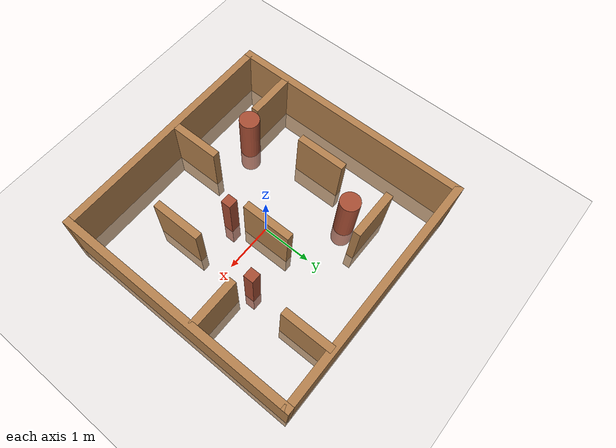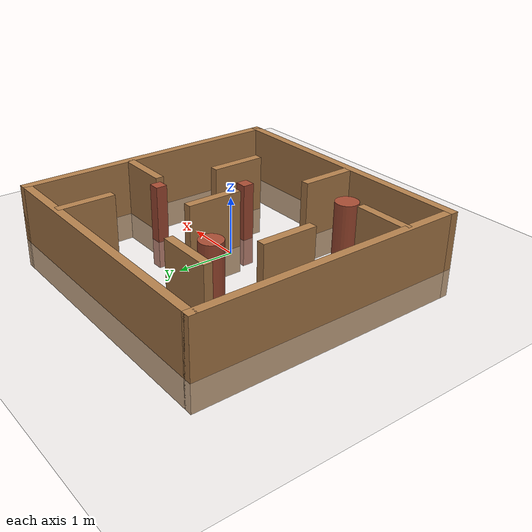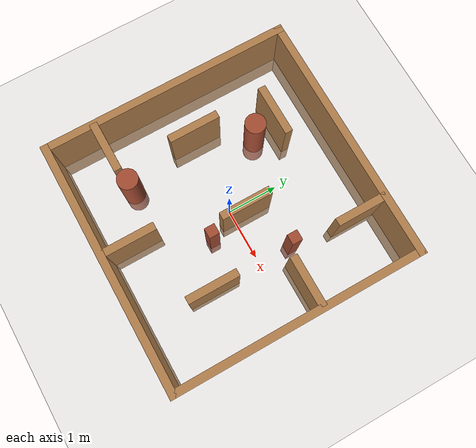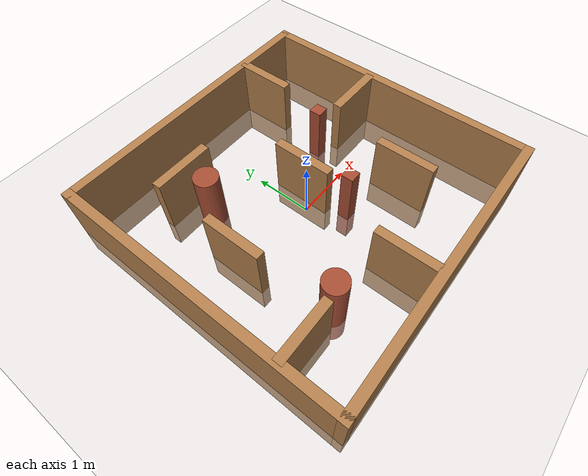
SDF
<sdf version="1.4">
 <world name="default">
  <include><uri>model://ground_plane</uri></include>
  <include><uri>model://sun</uri></include>
  <include><uri>model://my_plaza</uri><name>my_plaza</name></include>
 </world>
</sdf>

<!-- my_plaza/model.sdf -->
<sdf version='1.6'>
  <model name='my_plaza'>
    <pose frame=''>0 0 0 0 -0 0</pose>
    <link name='Wall_0'>
      <collision name='Wall_0_Collision'>
        <geometry>
          <box>
            <size>5 0.15 1.5</size>
          </box>
        </geometry>
        <pose frame=''>0 0 0.25 0 -0 0</pose>
      </collision>
      <visual name='Wall_0_Visual'>
        <pose frame=''>0 0 0.25 0 -0 0</pose>
        <geometry>
          <box>
            <size>5 0.15 1.5</size>
          </box>
        </geometry>
        <material>
          <script>
            <uri>file://media/materials/scripts/gazebo.material</uri>
            <name>Gazebo/Wood</name>
          </script>
          <ambient>1 1 1 1</ambient>
        </material>
      </visual>
      <pose frame=''>-2.425 0 0 0 -0 1.5708</pose>
    </link>
    <link name='Wall_11'>
      <collision name='Wall_11_Collision'>
        <geometry>
          <box>
            <size>1 0.15 1.5</size>
          </box>
        </geometry>
        <pose frame=''>0 0 0.25 0 -0 0</pose>
      </collision>
      <visual name='Wall_11_Visual'>
        <pose frame=''>0 0 0.25 0 -0 0</pose>
        <geometry>
          <box>
            <size>1 0.15 1.5</size>
          </box>
        </geometry>
        <material>
          <script>
            <uri>file://media/materials/scripts/gazebo.material</uri>
            <name>Gazebo/Wood</name>
          </script>
          <ambient>1 1 1 1</ambient>
        </material>
      </visual>
      <pose frame=''>-1.937 -1.467 0 0 -0 0</pose>
    </link>
    <link name='Wall_13'>
      <collision name='Wall_13_Collision'>
        <geometry>
          <box>
            <size>1 0.15 1.5</size>
          </box>
        </geometry>
        <pose frame=''>0 0 0.25 0 -0 0</pose>
      </collision>
      <visual name='Wall_13_Visual'>
        <pose frame=''>0 0 0.25 0 -0 0</pose>
        <geometry>
          <box>
            <size>1 0.15 1.5</size>
          </box>
        </geometry>
        <material>
          <script>
            <uri>file://media/materials/scripts/gazebo.material</uri>
            <name>Gazebo/Wood</name>
          </script>
          <ambient>1 1 1 1</ambient>
        </material>
      </visual>
      <pose frame=''>-0.22 -1.866 0 0 0 -1.5708</pose>
    </link>
    <link name='Wall_15'>
      <collision name='Wall_15_Collision'>
        <geometry>
          <box>
            <size>1 0.15 1.5</size>
          </box>
        </geometry>
        <pose frame=''>0 0 0.25 0 -0 0</pose>
      </collision>
      <visual name='Wall_15_Visual'>
        <pose frame=''>0 0 0.25 0 -0 0</pose>
        <geometry>
          <box>
            <size>1 0.15 1.5</size>
          </box>
        </geometry>
        <material>
          <script>
            <uri>file://media/materials/scripts/gazebo.material</uri>
            <name>Gazebo/Wood</name>
          </script>
          <ambient>1 1 1 1</ambient>
        </material>
      </visual>
      <pose frame=''>1.195 -1.002 0 0 -0 1.5708</pose>
    </link>
    <link name='Wall_17'>
      <collision name='Wall_17_Collision'>
        <geometry>
          <box>
            <size>1 0.15 1.5</size>
          </box>
        </geometry>
        <pose frame=''>0 0 0.25 0 -0 0</pose>
      </collision>
      <visual name='Wall_17_Visual'>
        <pose frame=''>0 0 0.25 0 -0 0</pose>
        <geometry>
          <box>
            <size>1 0.15 1.5</size>
          </box>
        </geometry>
        <material>
          <script>
            <uri>file://media/materials/scripts/gazebo.material</uri>
            <name>Gazebo/Wood</name>
          </script>
          <ambient>1 1 1 1</ambient>
        </material>
      </visual>
      <pose frame=''>1.288 1.93 0 0 0 -1.5708</pose>
    </link>
    <link name='Wall_19'>
      <collision name='Wall_19_Collision'>
        <geometry>
          <box>
            <size>1 0.15 1.5</size>
          </box>
        </geometry>
        <pose frame=''>0 0 0.25 0 -0 0</pose>
      </collision>
      <visual name='Wall_19_Visual'>
        <pose frame=''>0 0 0.25 0 -0 0</pose>
        <geometry>
          <box>
            <size>1 0.15 1.5</size>
          </box>
        </geometry>
        <material>
          <script>
            <uri>file://media/materials/scripts/gazebo.material</uri>
            <name>Gazebo/Wood</name>
          </script>
          <ambient>1 1 1 1</ambient>
        </material>
      </visual>
      <pose frame=''>1.91128 0.4632 0 0 -0 0</pose>
    </link>
    <link name='Wall_2'>
      <collision name='Wall_2_Collision'>
        <geometry>
          <box>
            <size>5 0.15 1.5</size>
          </box>
        </geometry>
        <pose frame=''>0 0 0.25 0 -0 0</pose>
      </collision>
      <visual name='Wall_2_Visual'>
        <pose frame=''>0 0 0.25 0 -0 0</pose>
        <geometry>
          <box>
            <size>5 0.15 1.5</size>
          </box>
        </geometry>
        <material>
          <script>
            <uri>file://media/materials/scripts/gazebo.material</uri>
            <name>Gazebo/Wood</name>
          </script>
          <ambient>1 1 1 1</ambient>
        </material>
      </visual>
      <pose frame=''>0 2.425 0 0 -0 0</pose>
    </link>
    <link name='Wall_21'>
      <collision name='Wall_21_Collision'>
        <geometry>
          <box>
            <size>1 0.15 1.5</size>
          </box>
        </geometry>
        <pose frame=''>0 0 0.25 0 -0 0</pose>
      </collision>
      <visual name='Wall_21_Visual'>
        <pose frame=''>0 0 0.25 0 -0 0</pose>
        <geometry>
          <box>
            <size>1 0.15 1.5</size>
          </box>
        </geometry>
        <material>
          <script>
            <uri>file://media/materials/scripts/gazebo.material</uri>
            <name>Gazebo/Wood</name>
          </script>
          <ambient>1 1 1 1</ambient>
        </material>
      </visual>
      <pose frame=''>0.204 0.215 0 0 0 -1.5708</pose>
    </link>
    <link name='Wall_3'>
      <collision name='Wall_3_Collision'>
        <geometry>
          <box>
            <size>5 0.15 1.5</size>
          </box>
        </geometry>
        <pose frame=''>0 0 0.25 0 -0 0</pose>
      </collision>
      <visual name='Wall_3_Visual'>
        <pose frame=''>0 0 0.25 0 -0 0</pose>
        <geometry>
          <box>
            <size>5 0.15 1.5</size>
          </box>
        </geometry>
        <material>
          <script>
            <uri>file://media/materials/scripts/gazebo.material</uri>
            <name>Gazebo/Wood</name>
          </script>
          <ambient>1 1 1 1</ambient>
        </material>
      </visual>
      <pose frame=''>2.425 0 0 0 0 -1.5708</pose>
    </link>
    <link name='Wall_4'>
      <collision name='Wall_4_Collision'>
        <geometry>
          <box>
            <size>5 0.15 1.5</size>
          </box>
        </geometry>
        <pose frame=''>0 0 0.25 0 -0 0</pose>
      </collision>
      <visual name='Wall_4_Visual'>
        <pose frame=''>0 0 0.25 0 -0 0</pose>
        <geometry>
          <box>
            <size>5 0.15 1.5</size>
          </box>
        </geometry>
        <material>
          <script>
            <uri>file://media/materials/scripts/gazebo.material</uri>
            <name>Gazebo/Wood</name>
          </script>
          <ambient>1 1 1 1</ambient>
        </material>
      </visual>
      <pose frame=''>0 -2.425 0 0 -0 3.14159</pose>
    </link>
    <link name='Wall_7'>
      <collision name='Wall_7_Collision'>
        <geometry>
          <box>
            <size>1 0.15 1.5</size>
          </box>
        </geometry>
        <pose frame=''>0 0 0.25 0 -0 0</pose>
      </collision>
      <visual name='Wall_7_Visual'>
        <pose frame=''>0 0 0.25 0 -0 0</pose>
        <geometry>
          <box>
            <size>1 0.15 1.5</size>
          </box>
        </geometry>
        <material>
          <script>
            <uri>file://media/materials/scripts/gazebo.material</uri>
            <name>Gazebo/Wood</name>
          </script>
          <ambient>1 1 1 1</ambient>
        </material>
      </visual>
      <pose frame=''>-1.064 1.548 0 0 -0 0</pose>

    </link>
    <link name='Wall_9'>
      <collision name='Wall_9_Collision'>
        <geometry>
          <box>
            <size>1 0.15 1.5</size>
          </box>
        </geometry>
        <pose frame=''>0 0 0.25 0 -0 0</pose>
      </collision>
      <visual name='Wall_9_Visual'>
        <pose frame=''>0 0 0.25 0 -0 0</pose>
        <geometry>
          <box>
            <size>1 0.15 1.5</size>
          </box>
        </geometry>
        <material>
          <script>
            <uri>file://media/materials/scripts/gazebo.material</uri>
            <name>Gazebo/Wood</name>
          </script>
          <ambient>1 1 1 1</ambient>
        </material>
      </visual>
      <pose frame=''>-1.502 0.092 0 0 0 -1.5708</pose>
    </link>

    <link name='name_cylinder_I'>
      <collision name='collision_cylinder_I'>
        <geometry>
          <cylinder>
            <radius>0.2</radius>
            <length>1.5</length>
          </cylinder>
        </geometry>
        <pose frame=''>0 0 0 0 0 0</pose>
      </collision>
      <visual name='visual_cylinder_I'>
        <pose frame=''>0 0 0 0 0 0</pose>
        <geometry>
          <cylinder>
            <radius>0.2</radius>
            <length>1.5</length>
          </cylinder>
        </geometry>
        <material>
          <script>
            <uri>file://media/materials/scripts/gazebo.material</uri>
            <name>Gazebo/Bricks</name>
          </script>
          <ambient>1 1 1 1</ambient>
        </material>
      </visual>
      <pose frame=''>-1.0 1.1 0.25 0 0 0</pose>
    </link>

    <link name='name_cylinder_II'>
      <collision name='collision_cylinder_II'>
        <geometry>
          <cylinder>
            <radius>0.2</radius>
            <length>1.5</length>
          </cylinder>
        </geometry>
        <pose frame=''>0 0 0 0 0 0</pose>
      </collision>
      <visual name='visual_cylinder_II'>
        <pose frame=''>0 0 0 0 0 0</pose>
        <geometry>
          <cylinder>
            <radius>0.2</radius>
            <length>1.5</length>
          </cylinder>
        </geometry>
         <material>
          <script>
            <uri>file://media/materials/scripts/gazebo.material</uri>
            <name>Gazebo/Bricks</name>
          </script>
          <ambient>1 1 1 1</ambient>
        </material>
      </visual>
      <pose frame=''>-1.2 -1.4 0.25 0 0 0</pose>
    </link>

    <link name='name_box_I'>
      <collision name='collision_box_I'>
        <geometry>
          <box>
            <size>0.2 0.2 1.5</size>
          </box>
        </geometry>
        <pose frame=''>0 0 0 0 0 0</pose>
      </collision>
      <visual name='visual_box_I'>
        <pose frame=''>0 0 0 0 0 0</pose>
        <geometry>
          <box>
            <size>0.2 0.2 1.5</size>
          </box>
        </geometry>
         <material>
          <script>
            <uri>file://media/materials/scripts/gazebo.material</uri>
            <name>Gazebo/Bricks</name>
          </script>
          <ambient>1 1 1 1</ambient>
        </material>
      </visual>
      <pose frame=''>0.35 -0.55 0.25 0 0 0</pose>
    </link>

    <link name='name_box_II'>
      <collision name='collision_box_II'>
        <geometry>
          <box>
            <size>0.2 0.2 1.5</size>
          </box>
        </geometry>
        <pose frame=''>0 0 0 0 0 0</pose>
      </collision>
      <visual name='visual_box_I'>
        <pose frame=''>0 0 0 0 0 0</pose>
        <geometry>
          <box>
            <size>0.2 0.2 1.5</size>
          </box>
        </geometry>
         <material>
          <script>
            <uri>file://media/materials/scripts/gazebo.material</uri>
            <name>Gazebo/Bricks</name>
          </script>
          <ambient>1 1 1 1</ambient>
        </material>
      </visual>
      <pose frame=''>1.15 0.65 0.25 0 0 0</pose>
    </link>

    <static>1</static>
  </model>
</sdf>
